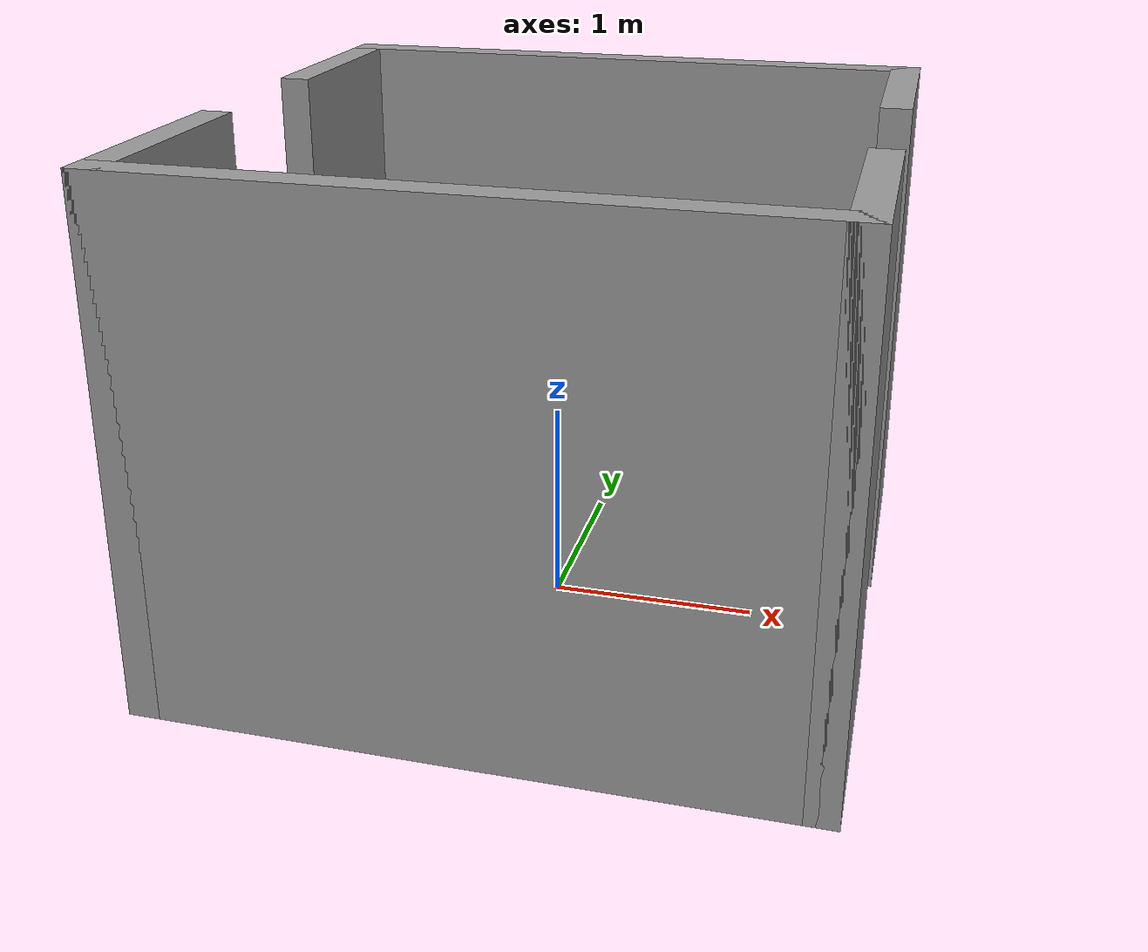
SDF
<?xml version='1.0'?>
<sdf version='1.7'>
  <model name='room'>
    <pose>0 0 0 0 -0 0</pose>
    <link name='Wall_0'>
      <collision name='Wall_0_Collision'>
        <geometry>
          <box>
            <size>3.15 0.15 2.5</size>
          </box>
        </geometry>
        <pose>0 0 1.25 0 -0 0</pose>
      </collision>
      <visual name='Wall_0_Visual'>
        <pose>0 0 1.25 0 -0 0</pose>
        <geometry>
          <box>
            <size>3.15 0.15 2.5</size>
          </box>
        </geometry>
        <material>
          <script>
            <uri>file://media/materials/scripts/gazebo.material</uri>
            <name>Gazebo/Grey</name>
          </script>
          <ambient>1 1 1 1</ambient>
        </material>
        <meta>
          <layer>0</layer>
        </meta>
      </visual>
      <pose>0 1.5 0 0 -0 0</pose>
    </link>
    <link name='Wall_1'>
      <collision name='Wall_1_Collision'>
        <geometry>
          <box>
            <size>1.15 0.15 2.5</size>
          </box>
        </geometry>
        <pose>0 0 1.25 0 -0 0</pose>
      </collision>
      <visual name='Wall_1_Visual'>
        <pose>0 0 1.25 0 -0 0</pose>
        <geometry>
          <box>
            <size>1.15 0.15 2.5</size>
          </box>
        </geometry>
        <material>
          <script>
            <uri>file://media/materials/scripts/gazebo.material</uri>
            <name>Gazebo/Grey</name>
          </script>
          <ambient>1 1 1 1</ambient>
        </material>
        <meta>
          <layer>0</layer>
        </meta>
      </visual>
      <pose>1.5 1 0 0 -0 -1.5708</pose>
    </link>
    <link name='Wall_3'>
      <collision name='Wall_3_Collision'>
        <geometry>
          <box>
            <size>1.15 0.15 2.5</size>
          </box>
        </geometry>
        <pose>0 0 1.25 0 -0 0</pose>
      </collision>
      <visual name='Wall_3_Visual'>
        <pose>0 0 1.25 0 -0 0</pose>
        <geometry>
          <box>
            <size>1.15 0.15 2.5</size>
          </box>
        </geometry>
        <material>
          <script>
            <uri>file://media/materials/scripts/gazebo.material</uri>
            <name>Gazebo/Grey</name>
          </script>
          <ambient>1 1 1 1</ambient>
        </material>
        <meta>
          <layer>0</layer>
        </meta>
      </visual>
      <pose>-1.5 1 0 0 -0 -1.5708</pose>
    </link>
    <link name='Wall_5'>
      <collision name='Wall_5_Collision'>
        <geometry>
          <box>
            <size>3.15 0.15 2.5</size>
          </box>
        </geometry>
        <pose>0 0 1.25 0 -0 0</pose>
      </collision>
      <visual name='Wall_5_Visual'>
        <pose>0 0 1.25 0 -0 0</pose>
        <geometry>
          <box>
            <size>3.15 0.15 2.5</size>
          </box>
        </geometry>
        <material>
          <script>
            <uri>file://media/materials/scripts/gazebo.material</uri>
            <name>Gazebo/Grey</name>
          </script>
          <ambient>1 1 1 1</ambient>
        </material>
        <meta>
          <layer>0</layer>
        </meta>
      </visual>
      <pose>0 -1.5 0 0 -0 0</pose>
    </link>
    <link name='Wall_7'>
      <collision name='Wall_7_Collision'>
        <geometry>
          <box>
            <size>1.15 0.15 2.5</size>
          </box>
        </geometry>
        <pose>0 0 1.25 0 -0 0</pose>
      </collision>
      <visual name='Wall_7_Visual'>
        <pose>0 0 1.25 0 -0 0</pose>
        <geometry>
          <box>
            <size>1.15 0.15 2.5</size>
          </box>
        </geometry>
        <material>
          <script>
            <uri>file://media/materials/scripts/gazebo.material</uri>
            <name>Gazebo/Grey</name>
          </script>
          <ambient>1 1 1 1</ambient>
        </material>
        <meta>
          <layer>0</layer>
        </meta>
      </visual>
      <pose>-1.5 -1 0 0 -0 1.5708</pose>
    </link>
    <link name='Wall_9'>
      <collision name='Wall_9_Collision'>
        <geometry>
          <box>
            <size>1.15 0.15 2.5</size>
          </box>
        </geometry>
        <pose>0 0 1.25 0 -0 0</pose>
      </collision>
      <visual name='Wall_9_Visual'>
        <pose>0 0 1.25 0 -0 0</pose>
        <geometry>
          <box>
            <size>1.15 0.15 2.5</size>
          </box>
        </geometry>
        <material>
          <script>
            <uri>file://media/materials/scripts/gazebo.material</uri>
            <name>Gazebo/Grey</name>
          </script>
          <ambient>1 1 1 1</ambient>
        </material>
        <meta>
          <layer>0</layer>
        </meta>
      </visual>
      <pose>1.5 -1 0 0 -0 1.5708</pose>
    </link>
    <static>1</static>
  </model>
</sdf>
